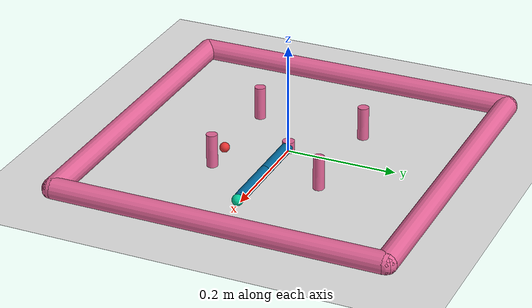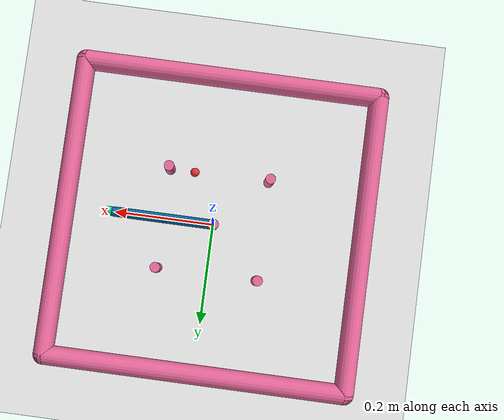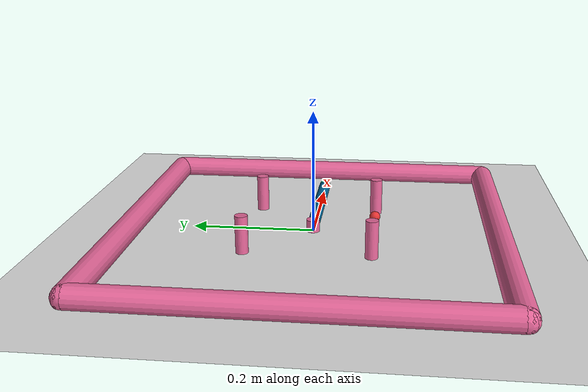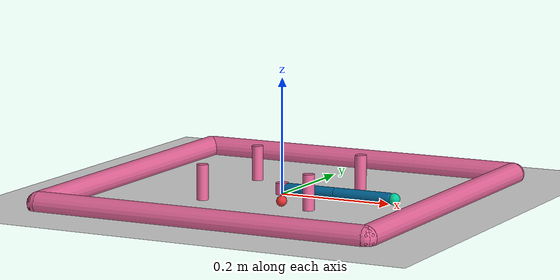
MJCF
<mujoco model="reacher">
	<compiler angle="radian" inertiafromgeom="true"/>

	<default>
		<joint armature="1" damping="1" limited="true"/>
		<geom contype="0" friction="1 0.1 0.1" rgba="0.7 0.7 0 1"/>
	</default>

	<option gravity="0 0 -9.81" integrator="RK4" timestep="0.01"/>

	<worldbody>
		<!-- Arena -->
		<geom conaffinity="0" contype="0" name="ground" pos="0 0 0" rgba="0.9 0.9 0.9 1" size="1 1 10" type="plane"/>
		<geom conaffinity="0" fromto="-.3 -.3 .01 .3 -.3 .01" name="sideS" rgba="0.9 0.4 0.6 1" size=".02" type="capsule"/>
		<geom conaffinity="0" fromto=" .3 -.3 .01 .3  .3 .01" name="sideE" rgba="0.9 0.4 0.6 1" size=".02" type="capsule"/>
		<geom conaffinity="0" fromto="-.3  .3 .01 .3  .3 .01" name="sideN" rgba="0.9 0.4 0.6 1" size=".02" type="capsule"/>
		<geom conaffinity="0" fromto="-.3 -.3 .01 -.3 .3 .01" name="sideW" rgba="0.9 0.4 0.6 1" size=".02" type="capsule"/>
		<!-- Arm -->
		<geom conaffinity="0" contype="0" fromto="0 0 0 0 0 0.02" name="root" rgba="0.9 0.4 0.6 1" size=".011" type="cylinder"/>
		<body name="body0" pos="0 0 .01">
			<geom fromto="0 0 0 0.1 0 0" name="link0" rgba="0.0 0.4 0.6 1" size=".01" type="capsule"/>
			<joint axis="0 0 1" limited="false" name="joint0" pos="0 0 0" type="hinge"/>
			<body name="body1" pos="0.1 0 0">
				<joint axis="0 0 1" limited="true" name="joint1" pos="0 0 0" range="-3.0 3.0" type="hinge"/>
				<geom fromto="0 0 0 0.1 0 0" name="link1" rgba="0.0 0.4 0.6 1" size=".01" type="capsule"/>
				<body name="fingertip" pos="0.11 0 0">
					<geom contype="0" name="fingertip" pos="0 0 0" rgba="0.0 0.8 0.6 1" size=".01" type="sphere"/>
				</body>
			</body>
		</body>

		<!-- Target -->
		<body name="target" pos=".05 -.1 .01">
			<joint armature="0" axis="1 0 0" damping="0" limited="true" name="target_x" pos="0 0 0" range="-.27 .27" ref=".1" stiffness="0" type="slide"/>
			<joint armature="0" axis="0 1 0" damping="0" limited="true" name="target_y" pos="0 0 0" range="-.27 .27" ref="-.1" stiffness="0" type="slide"/>
			<geom conaffinity="0" contype="0" name="target" pos="0 0 0" rgba="0.9 0.2 0.2 1" size=".009" type="sphere"/>
		</body>

		<!-- Obsacle -->
		<body name="obstacle1" pos=".1 -.1 .01">
			<geom conaffinity="1" contype="1" name="obstacle1" pos="0 0 0" rgba="0.9 0.4 0.6 1" size="0.01 0.05" type="cylinder" solimp="0.998 0.998 0.001" mass="10" solref="0.001 1" density="100" friction="0.95 0.3 0.1" condim="4"/>
		</body>
		<body name="obstacle2" pos="-.1 .1 .01">
			<geom conaffinity="1" contype="1" name="obstacle2" pos="0 0 0" rgba="0.9 0.4 0.6 1" size="0.01 0.05" type="cylinder" solimp="0.998 0.998 0.001" mass="10" solref="0.001 1" density="100" friction="0.95 0.3 0.1" condim="4"/>
		</body>
		<body name="obstacle3" pos=".1 .1 .01">
			<geom conaffinity="1" contype="1" name="obstacle3" pos="0 0 0" rgba="0.9 0.4 0.6 1" size="0.01 0.05" type="cylinder" solimp="0.998 0.998 0.001" mass="10" solref="0.001 1" density="100" friction="0.95 0.3 0.1" condim="4"/>
		</body>
		<body name="obstacle4" pos="-.1 -.1 .01">
			<geom conaffinity="1" contype="1" name="obstacle4" pos="0 0 0" rgba="0.9 0.4 0.6 1" size="0.01 0.05" type="cylinder" solimp="0.998 0.998 0.001" mass="10" solref="0.001 1" density="100" friction="0.95 0.3 0.1" condim="4"/>
		</body>

	</worldbody>

	<actuator>
		<motor ctrllimited="true" ctrlrange="-1.0 1.0" gear="200.0" joint="joint0"/>
		<motor ctrllimited="true" ctrlrange="-1.0 1.0" gear="200.0" joint="joint1"/>
	</actuator>

</mujoco>
